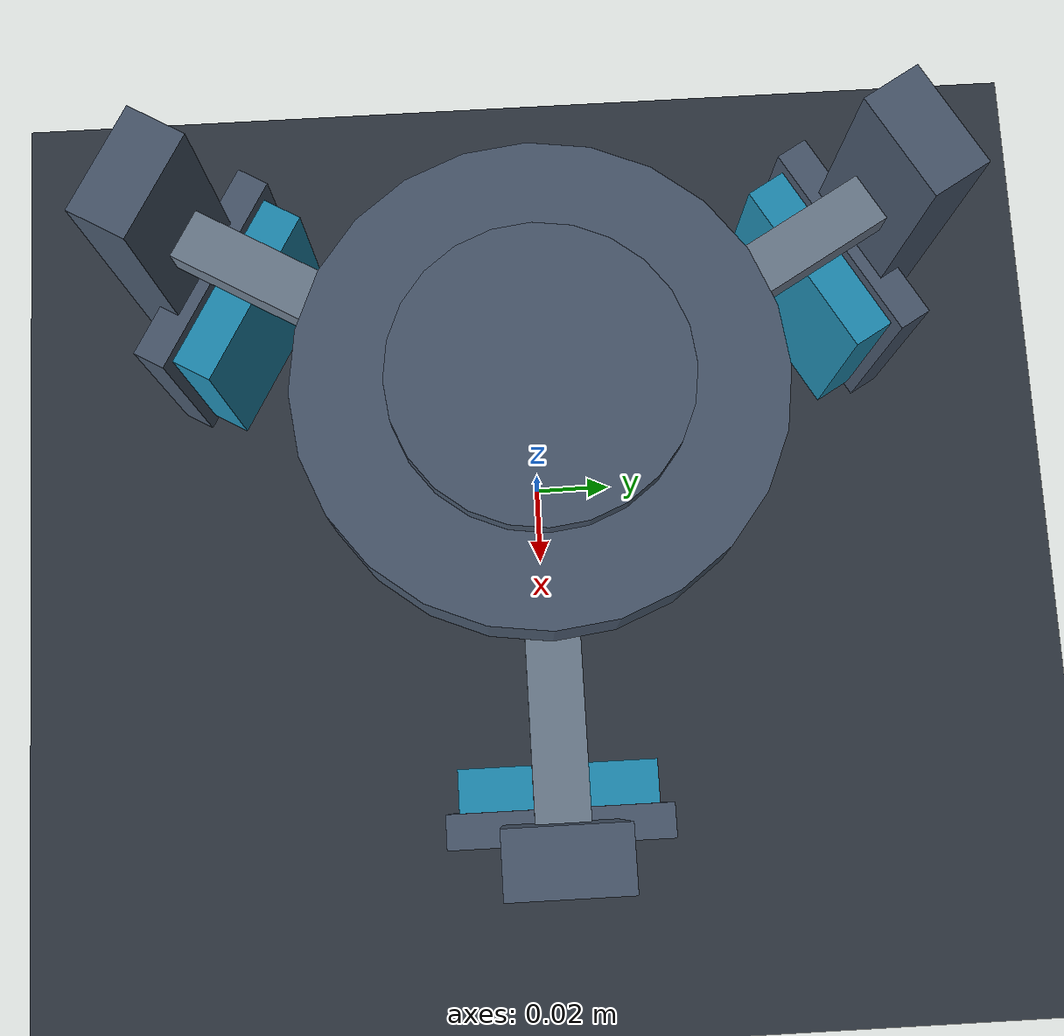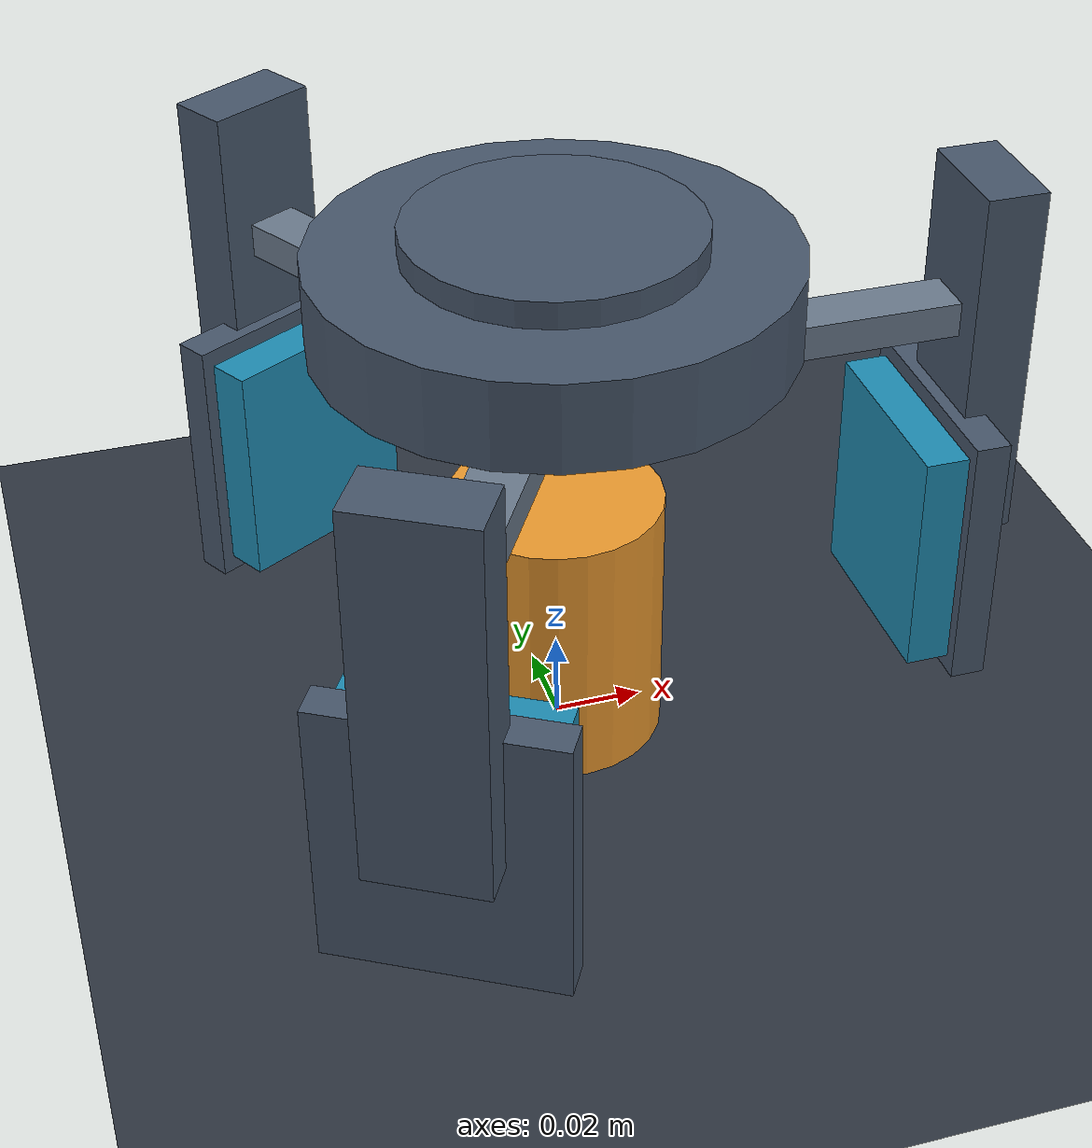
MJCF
<mujoco model="blindtouch_radial_tactile_claw">
  <compiler angle="radian" autolimits="true"/>
  <option timestep="0.002" integrator="implicitfast" gravity="0 0 -9.81"
          cone="elliptic" iterations="50"/>
  <statistic center="0 0 0.08" extent="0.28"/>

  <visual>
    <headlight diffuse="0.6 0.6 0.6" ambient="0.35 0.35 0.35"/>
    <rgba haze="0.15 0.20 0.25 1"/>
    <global azimuth="135" elevation="-25" offwidth="1280" offheight="720"/>
  </visual>

  <default>
    <joint damping="0.8" armature="0.002"/>
    <geom margin="0.001"/>

    <default class="structure">
      <geom contype="0" conaffinity="0" material="frame"/>
    </default>

    <!-- Pad-object contacts are declared explicitly below so friction can vary. -->
    <default class="pad">
      <geom contype="0" conaffinity="0" condim="4" friction="1.0 0.01 0.001"
            solref="0.01 1" solimp="0.90 0.99 0.001" material="pad"/>
    </default>

    <!-- bitmasks: table=1, pads=2, object=4 -->
    <default class="table_contact">
      <geom contype="1" conaffinity="4" condim="4" friction="0.9 0.01 0.001"
            solref="0.01 1" solimp="0.90 0.99 0.001"/>
    </default>

    <default class="object_contact">
      <geom contype="4" conaffinity="1" condim="4" friction="0.8 0.01 0.001"
            solref="0.01 1" solimp="0.90 0.99 0.001"/>
    </default>

    <!-- touch sites collect normal contact force inside their volume. -->
    <default class="taxel">
      <!-- Slight overlap removes blind strips between adjacent artificial-skin cells. -->
      <site type="box" size="0.004 0.008 0.0095"
            rgba="0.95 0.25 0.10 0.35" group="3"/>
    </default>

    <default class="pad_zone">
      <site type="box" size="0.0025 0.0235 0.0275"
            rgba="0 0 0 0" group="4"/>
    </default>
  </default>

  <asset>
    <material name="floor" rgba="0.18 0.21 0.25 1"/>
    <material name="frame" rgba="0.28 0.34 0.42 1"/>
    <material name="rail" rgba="0.42 0.48 0.55 1"/>
    <material name="pad" rgba="0.12 0.55 0.70 1"/>
    <material name="object" rgba="0.92 0.60 0.18 1"/>
    <mesh name="banana_visual_mesh" file="objects/banana_visual.obj" smoothnormal="true"/>
  </asset>

  <worldbody>
    <light name="key_light" pos="0.25 -0.25 0.40" dir="-0.4 0.4 -1"/>
    <camera name="overview" pos="0.28 -0.28 0.22" xyaxes="0.707 0.707 0 -0.30 0.30 0.906"/>
    <camera name="closeup" pos="0.17 -0.17 0.13" xyaxes="0.707 0.707 0 -0.30 0.30 0.906"/>
    <geom name="table" class="table_contact" type="plane" size="0.32 0.32 0.01"
          material="floor"/>

    <!-- positive palm_lift motion raises the entire claw and any grasped object. -->
    <body name="palm" pos="0 0 0.11">
      <joint name="palm_lift" type="slide" axis="0 0 1" range="-0.02 0.14"/>
      <geom name="palm_shell" class="structure" type="cylinder" size="0.052 0.010"
            mass="0.18"/>
      <geom name="palm_cap" class="structure" type="cylinder" pos="0 0 0.012"
            size="0.032 0.004" mass="0.04"/>
      <geom name="finger_1_rail" class="structure" material="rail" type="box"
            pos="0.062 0 -0.018" size="0.034 0.006 0.004" mass="0.01"/>
      <geom name="finger_2_rail" class="structure" material="rail" type="box"
            pos="-0.031 0.053694 -0.018" euler="0 0 2.09439510239"
            size="0.034 0.006 0.004" mass="0.01"/>
      <geom name="finger_3_rail" class="structure" material="rail" type="box"
            pos="-0.031 -0.053694 -0.018" euler="0 0 -2.09439510239"
            size="0.034 0.006 0.004" mass="0.01"/>
      <site name="palm_frame" type="sphere" size="0.003" rgba="0.30 0.85 0.40 1"
            group="4"/>
      <site name="grasp_center" type="sphere" pos="0 0 -0.070" size="0.003"
            rgba="0.95 0.95 0.20 0.5" group="4"/>

      <!-- finger local -X points inward. all fingers share the same simple design. -->
      <body name="finger_1" pos="0.085 0 -0.070">
        <joint name="finger_1_close" type="slide" axis="-1 0 0" range="0 0.055"/>
        <geom name="finger_1_link" class="structure" type="box"
              pos="0.012 0 0.042" size="0.007 0.013 0.042" mass="0.025"/>
        <geom name="finger_1_carrier" class="structure" type="box"
              pos="0.006 0 0" size="0.004 0.026 0.031" mass="0.012"/>
        <geom name="finger_1_pad" class="pad" type="box"
              size="0.008 0.023 0.027" mass="0.008"/>

        <site name="finger_1_pad_zone" class="pad_zone" pos="-0.008 0 0"/>
        <site name="finger_1_taxel_r0_c0" class="taxel" pos="-0.008 -0.015 0.018"/>
        <site name="finger_1_taxel_r0_c1" class="taxel" pos="-0.008 0 0.018"/>
        <site name="finger_1_taxel_r0_c2" class="taxel" pos="-0.008 0.015 0.018"/>
        <site name="finger_1_taxel_r1_c0" class="taxel" pos="-0.008 -0.015 0"/>
        <site name="finger_1_taxel_r1_c1" class="taxel" pos="-0.008 0 0"/>
        <site name="finger_1_taxel_r1_c2" class="taxel" pos="-0.008 0.015 0"/>
        <site name="finger_1_taxel_r2_c0" class="taxel" pos="-0.008 -0.015 -0.018"/>
        <site name="finger_1_taxel_r2_c1" class="taxel" pos="-0.008 0 -0.018"/>
        <site name="finger_1_taxel_r2_c2" class="taxel" pos="-0.008 0.015 -0.018"/>
      </body>

      <body name="finger_2" pos="-0.0425 0.073612 -0.070" euler="0 0 2.09439510239">
        <joint name="finger_2_close" type="slide" axis="-1 0 0" range="0 0.055"/>
        <geom name="finger_2_link" class="structure" type="box"
              pos="0.012 0 0.042" size="0.007 0.013 0.042" mass="0.025"/>
        <geom name="finger_2_carrier" class="structure" type="box"
              pos="0.006 0 0" size="0.004 0.026 0.031" mass="0.012"/>
        <geom name="finger_2_pad" class="pad" type="box"
              size="0.008 0.023 0.027" mass="0.008"/>

        <site name="finger_2_pad_zone" class="pad_zone" pos="-0.008 0 0"/>
        <site name="finger_2_taxel_r0_c0" class="taxel" pos="-0.008 -0.015 0.018"/>
        <site name="finger_2_taxel_r0_c1" class="taxel" pos="-0.008 0 0.018"/>
        <site name="finger_2_taxel_r0_c2" class="taxel" pos="-0.008 0.015 0.018"/>
        <site name="finger_2_taxel_r1_c0" class="taxel" pos="-0.008 -0.015 0"/>
        <site name="finger_2_taxel_r1_c1" class="taxel" pos="-0.008 0 0"/>
        <site name="finger_2_taxel_r1_c2" class="taxel" pos="-0.008 0.015 0"/>
        <site name="finger_2_taxel_r2_c0" class="taxel" pos="-0.008 -0.015 -0.018"/>
        <site name="finger_2_taxel_r2_c1" class="taxel" pos="-0.008 0 -0.018"/>
        <site name="finger_2_taxel_r2_c2" class="taxel" pos="-0.008 0.015 -0.018"/>
      </body>

      <body name="finger_3" pos="-0.0425 -0.073612 -0.070" euler="0 0 -2.09439510239">
        <joint name="finger_3_close" type="slide" axis="-1 0 0" range="0 0.055"/>
        <geom name="finger_3_link" class="structure" type="box"
              pos="0.012 0 0.042" size="0.007 0.013 0.042" mass="0.025"/>
        <geom name="finger_3_carrier" class="structure" type="box"
              pos="0.006 0 0" size="0.004 0.026 0.031" mass="0.012"/>
        <geom name="finger_3_pad" class="pad" type="box"
              size="0.008 0.023 0.027" mass="0.008"/>

        <site name="finger_3_pad_zone" class="pad_zone" pos="-0.008 0 0"/>
        <site name="finger_3_taxel_r0_c0" class="taxel" pos="-0.008 -0.015 0.018"/>
        <site name="finger_3_taxel_r0_c1" class="taxel" pos="-0.008 0 0.018"/>
        <site name="finger_3_taxel_r0_c2" class="taxel" pos="-0.008 0.015 0.018"/>
        <site name="finger_3_taxel_r1_c0" class="taxel" pos="-0.008 -0.015 0"/>
        <site name="finger_3_taxel_r1_c1" class="taxel" pos="-0.008 0 0"/>
        <site name="finger_3_taxel_r1_c2" class="taxel" pos="-0.008 0.015 0"/>
        <site name="finger_3_taxel_r2_c0" class="taxel" pos="-0.008 -0.015 -0.018"/>
        <site name="finger_3_taxel_r2_c1" class="taxel" pos="-0.008 0 -0.018"/>
        <site name="finger_3_taxel_r2_c2" class="taxel" pos="-0.008 0.015 -0.018"/>
      </body>
    </body>

    <body name="object" pos="0 0 0.030">
      <freejoint name="object_free"/>
      <geom name="object_geom" class="object_contact" type="cylinder"
            size="0.024 0.030" mass="0.10" material="object"/>
      <!-- Runtime-enabled compound collision pieces for the chassis family. -->
      <geom name="object_cabin_geom" class="object_contact" type="box"
            size="0.001 0.001 0.001" mass="0" contype="0" conaffinity="0"
            rgba="0 0 0 0"/>
      <geom name="object_wheel_fl_geom" class="object_contact" type="sphere"
            size="0.001" mass="0" contype="0" conaffinity="0"
            rgba="0 0 0 0"/>
      <geom name="object_wheel_fr_geom" class="object_contact" type="sphere"
            size="0.001" mass="0" contype="0" conaffinity="0"
            rgba="0 0 0 0"/>
      <geom name="object_wheel_rl_geom" class="object_contact" type="sphere"
            size="0.001" mass="0" contype="0" conaffinity="0"
            rgba="0 0 0 0"/>
      <geom name="object_wheel_rr_geom" class="object_contact" type="sphere"
            size="0.001" mass="0" contype="0" conaffinity="0"
            rgba="0 0 0 0"/>
      <geom name="object_banana_visual_geom" type="mesh" mesh="banana_visual_mesh"
            mass="0" contype="0" conaffinity="0" rgba="0 0 0 0"/>
      <site name="object_center" type="sphere" size="0.0025"
            rgba="1 1 1 0.65" group="4"/>
    </body>
  </worldbody>

  <!-- Explicit pairs prevent pad friction from masking sampled object friction. -->
  <contact>
    <pair name="finger_1_object_contact" geom1="finger_1_pad" geom2="object_geom"
          condim="4" friction="0.8 0.8 0.01 0.001 0.001"
          solref="0.01 1" solimp="0.90 0.99 0.001"/>
    <pair name="finger_2_object_contact" geom1="finger_2_pad" geom2="object_geom"
          condim="4" friction="0.8 0.8 0.01 0.001 0.001"
          solref="0.01 1" solimp="0.90 0.99 0.001"/>
    <pair name="finger_3_object_contact" geom1="finger_3_pad" geom2="object_geom"
          condim="4" friction="0.8 0.8 0.01 0.001 0.001"
          solref="0.01 1" solimp="0.90 0.99 0.001"/>
  </contact>

  <actuator>
    <position name="palm_lift_target" joint="palm_lift" kp="350" kv="25"
              ctrlrange="-0.02 0.14" forcerange="-80 80"/>
    <position name="finger_1_target" joint="finger_1_close" kp="220" kv="4"
              ctrlrange="0 0.055" forcerange="-15 15"/>
    <position name="finger_2_target" joint="finger_2_close" kp="220" kv="4"
              ctrlrange="0 0.055" forcerange="-15 15"/>
    <position name="finger_3_target" joint="finger_3_close" kp="220" kv="4"
              ctrlrange="0 0.055" forcerange="-15 15"/>
  </actuator>

  <sensor>
    <!-- Proprioception: values a real gripper could estimate from motors/encoders. -->
    <jointpos name="palm_lift_pos" joint="palm_lift"/>
    <jointvel name="palm_lift_vel" joint="palm_lift"/>
    <actuatorfrc name="palm_lift_effort" actuator="palm_lift_target"/>
    <jointpos name="finger_1_pos" joint="finger_1_close"/>
    <jointvel name="finger_1_vel" joint="finger_1_close"/>
    <actuatorfrc name="finger_1_effort" actuator="finger_1_target"/>
    <jointpos name="finger_2_pos" joint="finger_2_close"/>
    <jointvel name="finger_2_vel" joint="finger_2_close"/>
    <actuatorfrc name="finger_2_effort" actuator="finger_2_target"/>
    <jointpos name="finger_3_pos" joint="finger_3_close"/>
    <jointvel name="finger_3_vel" joint="finger_3_close"/>
    <actuatorfrc name="finger_3_effort" actuator="finger_3_target"/>

    <!-- Full-pad force is useful for safety thresholds and sensor diagnostics. -->
    <touch name="finger_1_pad_force" site="finger_1_pad_zone"/>
    <touch name="finger_2_pad_force" site="finger_2_pad_zone"/>
    <touch name="finger_3_pad_force" site="finger_3_pad_zone"/>

    <!-- Tactile observation: 3 fingertips x 3 rows x 3 columns = 27 taxels. -->
    <touch name="finger_1_taxel_r0_c0_force" site="finger_1_taxel_r0_c0"/>
    <touch name="finger_1_taxel_r0_c1_force" site="finger_1_taxel_r0_c1"/>
    <touch name="finger_1_taxel_r0_c2_force" site="finger_1_taxel_r0_c2"/>
    <touch name="finger_1_taxel_r1_c0_force" site="finger_1_taxel_r1_c0"/>
    <touch name="finger_1_taxel_r1_c1_force" site="finger_1_taxel_r1_c1"/>
    <touch name="finger_1_taxel_r1_c2_force" site="finger_1_taxel_r1_c2"/>
    <touch name="finger_1_taxel_r2_c0_force" site="finger_1_taxel_r2_c0"/>
    <touch name="finger_1_taxel_r2_c1_force" site="finger_1_taxel_r2_c1"/>
    <touch name="finger_1_taxel_r2_c2_force" site="finger_1_taxel_r2_c2"/>

    <touch name="finger_2_taxel_r0_c0_force" site="finger_2_taxel_r0_c0"/>
    <touch name="finger_2_taxel_r0_c1_force" site="finger_2_taxel_r0_c1"/>
    <touch name="finger_2_taxel_r0_c2_force" site="finger_2_taxel_r0_c2"/>
    <touch name="finger_2_taxel_r1_c0_force" site="finger_2_taxel_r1_c0"/>
    <touch name="finger_2_taxel_r1_c1_force" site="finger_2_taxel_r1_c1"/>
    <touch name="finger_2_taxel_r1_c2_force" site="finger_2_taxel_r1_c2"/>
    <touch name="finger_2_taxel_r2_c0_force" site="finger_2_taxel_r2_c0"/>
    <touch name="finger_2_taxel_r2_c1_force" site="finger_2_taxel_r2_c1"/>
    <touch name="finger_2_taxel_r2_c2_force" site="finger_2_taxel_r2_c2"/>

    <touch name="finger_3_taxel_r0_c0_force" site="finger_3_taxel_r0_c0"/>
    <touch name="finger_3_taxel_r0_c1_force" site="finger_3_taxel_r0_c1"/>
    <touch name="finger_3_taxel_r0_c2_force" site="finger_3_taxel_r0_c2"/>
    <touch name="finger_3_taxel_r1_c0_force" site="finger_3_taxel_r1_c0"/>
    <touch name="finger_3_taxel_r1_c1_force" site="finger_3_taxel_r1_c1"/>
    <touch name="finger_3_taxel_r1_c2_force" site="finger_3_taxel_r1_c2"/>
    <touch name="finger_3_taxel_r2_c0_force" site="finger_3_taxel_r2_c0"/>
    <touch name="finger_3_taxel_r2_c1_force" site="finger_3_taxel_r2_c1"/>
    <touch name="finger_3_taxel_r2_c2_force" site="finger_3_taxel_r2_c2"/>
  </sensor>

  <!-- some convenient deterministic starting states for viewer and controller tests. -->
  <keyframe>
    <key name="open"
         qpos="0 0 0 0 0 0 0.030 1 0 0 0"
         ctrl="0 0 0 0"/>
    <key name="approach"
         qpos="0 0.045 0.045 0.045 0 0 0.030 1 0 0 0"
         ctrl="0 0.045 0.045 0.045"/>
    <key name="light_contact"
         qpos="0 0.052 0.052 0.052 0 0 0.030 1 0 0 0"
         ctrl="0 0.052 0.052 0.052"/>
    <key name="secure_grasp"
         qpos="0 0.052 0.052 0.052 0 0 0.030 1 0 0 0"
         ctrl="0 0.055 0.055 0.055"/>
  </keyframe>
</mujoco>
